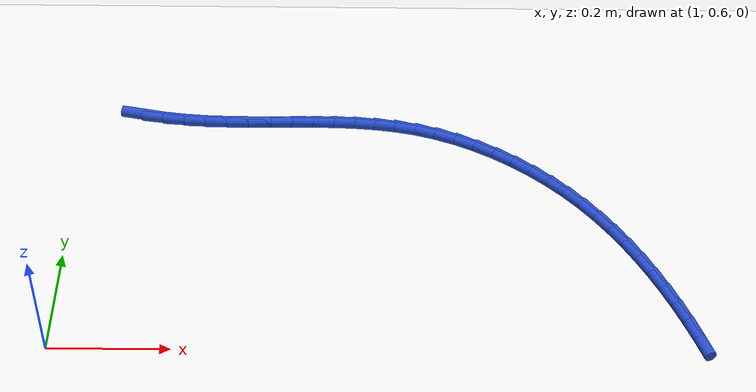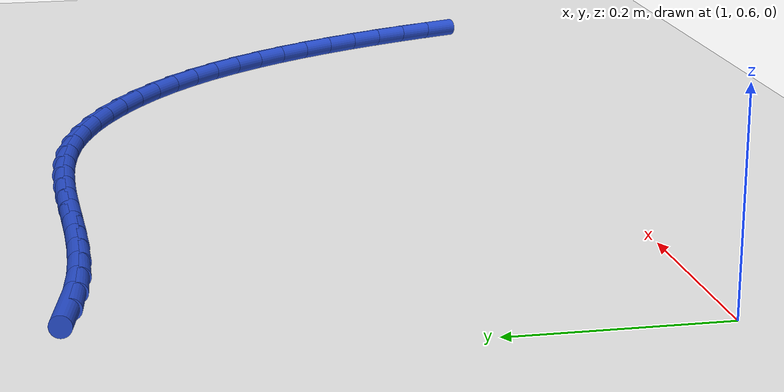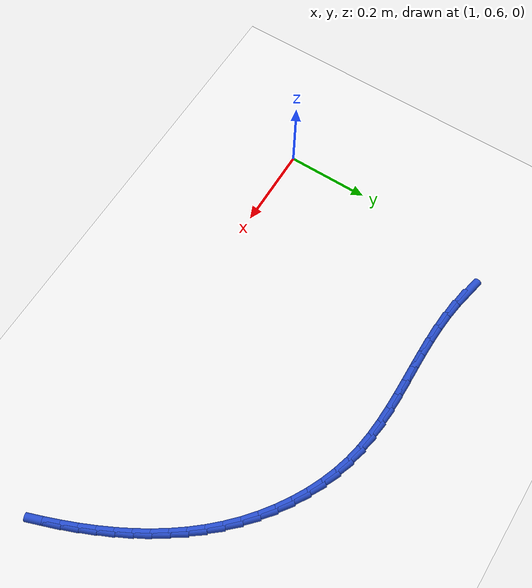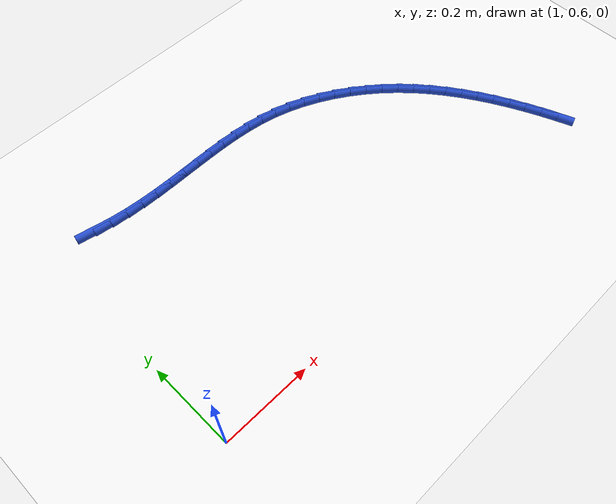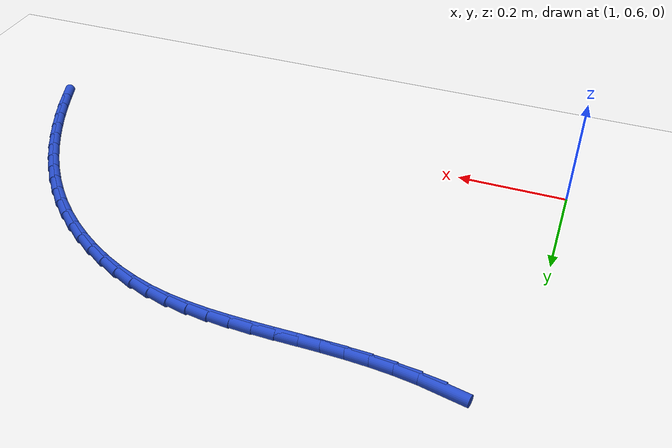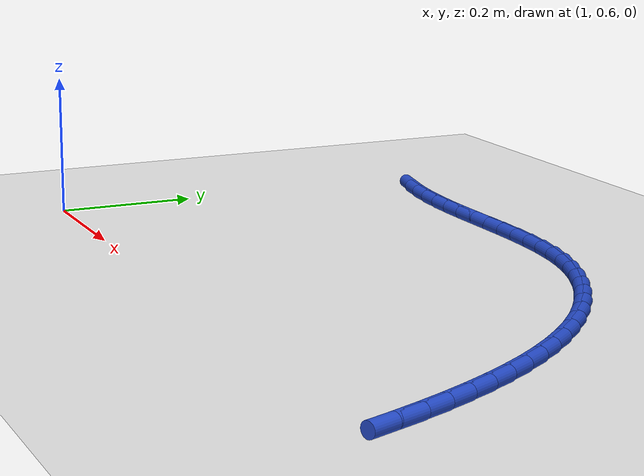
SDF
<sdf version="1.6">
 <world name="default">
  <model name="ground_plane">
   <static>1</static>
   <link name="link">
    <collision name="collision">
     <geometry><plane><normal>0 0 1</normal><size>100 100</size></plane></geometry>
     <surface><friction><ode><mu>100</mu><mu2>50</mu2></ode></friction></surface>
    </collision>
    <visual name="visual">
     <cast_shadows>0</cast_shadows>
     <geometry><plane><normal>0 0 1</normal><size>100 100</size></plane></geometry>
     <material>
      <script><uri>file://media/materials/scripts/gazebo.material</uri><name>Gazebo/WhiteGlow</name></script>
     </material>
    </visual>
   </link>
  </model>
  <model name="line">
   <link name="link_46">
    <pose>1.101560070446477 1.1359674359162086 0.01 0 1.57 -0.1992889178391938</pose>
    <collision name="collision">
     <geometry><cylinder><radius>0.01</radius><length>0.08</length></cylinder></geometry>
    </collision>
    <visual name="visual">
     <material>
      <script><name>Gazebo/Blue</name><uri>file://media/materials/scripts/gazebo.material</uri></script>
     </material>
     <geometry><cylinder><radius>0.01</radius><length>0.08</length></cylinder></geometry>
    </visual>
   </link>
   <link name="link_47">
    <pose>1.1397087469627167 1.1282625538016797 0.01 0 1.57 -0.1350952710099654</pose>
    <collision name="collision">
     <geometry><cylinder><radius>0.01</radius><length>0.08</length></cylinder></geometry>
    </collision>
    <visual name="visual">
     <material>
      <script><name>Gazebo/Blue</name><uri>file://media/materials/scripts/gazebo.material</uri></script>
     </material>
     <geometry><cylinder><radius>0.01</radius><length>0.08</length></cylinder></geometry>
    </visual>
   </link>
   <link name="link_48">
    <pose>1.1778838345319351 1.1230736745773449 0.01 0 1.57 -0.08133392156681518</pose>
    <collision name="collision">
     <geometry><cylinder><radius>0.01</radius><length>0.08</length></cylinder></geometry>
    </collision>
    <visual name="visual">
     <material>
      <script><name>Gazebo/Blue</name><uri>file://media/materials/scripts/gazebo.material</uri></script>
     </material>
     <geometry><cylinder><radius>0.01</radius><length>0.08</length></cylinder></geometry>
    </visual>
   </link>
   <link name="link_49">
    <pose>1.2160468347179172 1.1199628655380338 0.01 0 1.57 -0.03913708060453807</pose>
    <collision name="collision">
     <geometry><cylinder><radius>0.01</radius><length>0.08</length></cylinder></geometry>
    </collision>
    <visual name="visual">
     <material>
      <script><name>Gazebo/Blue</name><uri>file://media/materials/scripts/gazebo.material</uri></script>
     </material>
     <geometry><cylinder><radius>0.01</radius><length>0.08</length></cylinder></geometry>
    </visual>
   </link>
   <link name="link_50">
    <pose>1.2541618149288882 1.1184703943959258 0.01 0 1.57 -0.00877854155304162</pose>
    <collision name="collision">
     <geometry><cylinder><radius>0.01</radius><length>0.08</length></cylinder></geometry>
    </collision>
    <visual name="visual">
     <material>
      <script><name>Gazebo/Blue</name><uri>file://media/materials/scripts/gazebo.material</uri></script>
     </material>
     <geometry><cylinder><radius>0.01</radius><length>0.08</length></cylinder></geometry>
    </visual>
   </link>
   <link name="link_51">
    <pose>1.292192842573071 1.118136528863199 0.01 0 1.57 0.009627684290932397</pose>
    <collision name="collision">
     <geometry><cylinder><radius>0.01</radius><length>0.08</length></cylinder></geometry>
    </collision>
    <visual name="visual">
     <material>
      <script><name>Gazebo/Blue</name><uri>file://media/materials/scripts/gazebo.material</uri></script>
     </material>
     <geometry><cylinder><radius>0.01</radius><length>0.08</length></cylinder></geometry>
    </visual>
   </link>
   <link name="link_52">
    <pose>1.3301039850586902 1.1185015366520332 0.01 0 1.57 0.016000319685674228</pose>
    <collision name="collision">
     <geometry><cylinder><radius>0.01</radius><length>0.08</length></cylinder></geometry>
    </collision>
    <visual name="visual">
     <material>
      <script><name>Gazebo/Blue</name><uri>file://media/materials/scripts/gazebo.material</uri></script>
     </material>
     <geometry><cylinder><radius>0.01</radius><length>0.08</length></cylinder></geometry>
    </visual>
   </link>
   <link name="link_53">
    <pose>1.367859309793969 1.119105685474607 0.01 0 1.57 0.01021053627949765</pose>
    <collision name="collision">
     <geometry><cylinder><radius>0.01</radius><length>0.08</length></cylinder></geometry>
    </collision>
    <visual name="visual">
     <material>
      <script><name>Gazebo/Blue</name><uri>file://media/materials/scripts/gazebo.material</uri></script>
     </material>
     <geometry><cylinder><radius>0.01</radius><length>0.08</length></cylinder></geometry>
    </visual>
   </link>
   <link name="link_54">
    <pose>1.4054228841871328 1.1194892430431 0.01 0 1.57 -0.007948376541187201</pose>
    <collision name="collision">
     <geometry><cylinder><radius>0.01</radius><length>0.08</length></cylinder></geometry>
    </collision>
    <visual name="visual">
     <material>
      <script><name>Gazebo/Blue</name><uri>file://media/materials/scripts/gazebo.material</uri></script>
     </material>
     <geometry><cylinder><radius>0.01</radius><length>0.08</length></cylinder></geometry>
    </visual>
   </link>
   <link name="link_55">
    <pose>1.4427587756464044 1.1191924770696906 0.01 0 1.57 -0.038737924337312116</pose>
    <collision name="collision">
     <geometry><cylinder><radius>0.01</radius><length>0.08</length></cylinder></geometry>
    </collision>
    <visual name="visual">
     <material>
      <script><name>Gazebo/Blue</name><uri>file://media/materials/scripts/gazebo.material</uri></script>
     </material>
     <geometry><cylinder><radius>0.01</radius><length>0.08</length></cylinder></geometry>
    </visual>
   </link>
   <link name="link_56">
    <pose>1.479831051580008 1.1177556552665584 0.01 0 1.57 -0.08239083419778048</pose>
    <collision name="collision">
     <geometry><cylinder><radius>0.01</radius><length>0.08</length></cylinder></geometry>
    </collision>
    <visual name="visual">
     <material>
      <script><name>Gazebo/Blue</name><uri>file://media/materials/scripts/gazebo.material</uri></script>
     </material>
     <geometry><cylinder><radius>0.01</radius><length>0.08</length></cylinder></geometry>
    </visual>
   </link>
   <link name="link_57">
    <pose>1.5166037793961682 1.114719045345882 0.01 0 1.57 -0.1389590862366496</pose>
    <collision name="collision">
     <geometry><cylinder><radius>0.01</radius><length>0.08</length></cylinder></geometry>
    </collision>
    <visual name="visual">
     <material>
      <script><name>Gazebo/Blue</name><uri>file://media/materials/scripts/gazebo.material</uri></script>
     </material>
     <geometry><cylinder><radius>0.01</radius><length>0.08</length></cylinder></geometry>
    </visual>
   </link>
   <link name="link_58">
    <pose>1.5530410265031085 1.1096229150198407 0.01 0 1.57 -0.20809554832139596</pose>
    <collision name="collision">
     <geometry><cylinder><radius>0.01</radius><length>0.08</length></cylinder></geometry>
    </collision>
    <visual name="visual">
     <material>
      <script><name>Gazebo/Blue</name><uri>file://media/materials/scripts/gazebo.material</uri></script>
     </material>
     <geometry><cylinder><radius>0.01</radius><length>0.08</length></cylinder></geometry>
    </visual>
   </link>
   <link name="link_59">
    <pose>1.5891068603090526 1.102007532000613 0.01 0 1.57 -0.2867719032216477</pose>
    <collision name="collision">
     <geometry><cylinder><radius>0.01</radius><length>0.08</length></cylinder></geometry>
    </collision>
    <visual name="visual">
     <material>
      <script><name>Gazebo/Blue</name><uri>file://media/materials/scripts/gazebo.material</uri></script>
     </material>
     <geometry><cylinder><radius>0.01</radius><length>0.08</length></cylinder></geometry>
    </visual>
   </link>
   <link name="link_60">
    <pose>1.6247459759272804 1.091497535483131 0.01 0 1.57 -0.36375254858053074</pose>
    <collision name="collision">
     <geometry><cylinder><radius>0.01</radius><length>0.08</length></cylinder></geometry>
    </collision>
    <visual name="visual">
     <material>
      <script><name>Gazebo/Blue</name><uri>file://media/materials/scripts/gazebo.material</uri></script>
     </material>
     <geometry><cylinder><radius>0.01</radius><length>0.08</length></cylinder></geometry>
    </visual>
   </link>
   <link name="link_61">
    <pose>1.6598034585186796 1.0781513924253054 0.01 0 1.57 -0.4362256728753696</pose>
    <collision name="collision">
     <geometry><cylinder><radius>0.01</radius><length>0.08</length></cylinder></geometry>
    </collision>
    <visual name="visual">
     <material>
      <script><name>Gazebo/Blue</name><uri>file://media/materials/scripts/gazebo.material</uri></script>
     </material>
     <geometry><cylinder><radius>0.01</radius><length>0.08</length></cylinder></geometry>
    </visual>
   </link>
   <link name="link_62">
    <pose>1.6940924671043063 1.0621666165920467 0.01 0 1.57 -0.5049667959516304</pose>
    <collision name="collision">
     <geometry><cylinder><radius>0.01</radius><length>0.08</length></cylinder></geometry>
    </collision>
    <visual name="visual">
     <material>
      <script><name>Gazebo/Blue</name><uri>file://media/materials/scripts/gazebo.material</uri></script>
     </material>
     <geometry><cylinder><radius>0.01</radius><length>0.08</length></cylinder></geometry>
    </visual>
   </link>
   <link name="link_63">
    <pose>1.7274261461274572 1.043740785238263 0.01 0 1.57 -0.5707828892560924</pose>
    <collision name="collision">
     <geometry><cylinder><radius>0.01</radius><length>0.08</length></cylinder></geometry>
    </collision>
    <visual name="visual">
     <material>
      <script><name>Gazebo/Blue</name><uri>file://media/materials/scripts/gazebo.material</uri></script>
     </material>
     <geometry><cylinder><radius>0.01</radius><length>0.08</length></cylinder></geometry>
    </visual>
   </link>
   <link name="link_64">
    <pose>1.7596176400314312 1.0230714756188637 0.01 0 1.57 -0.6344900885407306</pose>
    <collision name="collision">
     <geometry><cylinder><radius>0.01</radius><length>0.08</length></cylinder></geometry>
    </collision>
    <visual name="visual">
     <material>
      <script><name>Gazebo/Blue</name><uri>file://media/materials/scripts/gazebo.material</uri></script>
     </material>
     <geometry><cylinder><radius>0.01</radius><length>0.08</length></cylinder></geometry>
    </visual>
   </link>
   <link name="link_65">
    <pose>1.7904800932595248 1.0003562649887585 0.01 0 1.57 -0.6969076532412875</pose>
    <collision name="collision">
     <geometry><cylinder><radius>0.01</radius><length>0.08</length></cylinder></geometry>
    </collision>
    <visual name="visual">
     <material>
      <script><name>Gazebo/Blue</name><uri>file://media/materials/scripts/gazebo.material</uri></script>
     </material>
     <geometry><cylinder><radius>0.01</radius><length>0.08</length></cylinder></geometry>
    </visual>
   </link>
   <link name="link_66">
    <pose>1.819826650255036 0.9757927306028568 0.01 0 1.57 -0.758807320168364</pose>
    <collision name="collision">
     <geometry><cylinder><radius>0.01</radius><length>0.08</length></cylinder></geometry>
    </collision>
    <visual name="visual">
     <material>
      <script><name>Gazebo/Blue</name><uri>file://media/materials/scripts/gazebo.material</uri></script>
     </material>
     <geometry><cylinder><radius>0.01</radius><length>0.08</length></cylinder></geometry>
    </visual>
   </link>
   <link name="link_67">
    <pose>1.8474746657595695 0.9495773265140206 0.01 0 1.57 -0.819230387233219</pose>
    <collision name="collision">
     <geometry><cylinder><radius>0.01</radius><length>0.08</length></cylinder></geometry>
    </collision>
    <visual name="visual">
     <material>
      <script><name>Gazebo/Blue</name><uri>file://media/materials/scripts/gazebo.material</uri></script>
     </material>
     <geometry><cylinder><radius>0.01</radius><length>0.08</length></cylinder></geometry>
    </visual>
   </link>
   <link name="link_68">
    <pose>1.8733643994042504 0.9218737188315165 0.01 0 1.57 -0.8762609594338301</pose>
    <collision name="collision">
     <geometry><cylinder><radius>0.01</radius><length>0.08</length></cylinder></geometry>
    </collision>
    <visual name="visual">
     <material>
      <script><name>Gazebo/Blue</name><uri>file://media/materials/scripts/gazebo.material</uri></script>
     </material>
     <geometry><cylinder><radius>0.01</radius><length>0.08</length></cylinder></geometry>
    </visual>
   </link>
   <link name="link_69">
    <pose>1.8975755216495918 0.8928083823500186 0.01 0 1.57 -0.9295640055066728</pose>
    <collision name="collision">
     <geometry><cylinder><radius>0.01</radius><length>0.08</length></cylinder></geometry>
    </collision>
    <visual name="visual">
     <material>
      <script><name>Gazebo/Blue</name><uri>file://media/materials/scripts/gazebo.material</uri></script>
     </material>
     <geometry><cylinder><radius>0.01</radius><length>0.08</length></cylinder></geometry>
    </visual>
   </link>
   <link name="link_70">
    <pose>1.9201952308841532 0.8625057836017064 0.01 0 1.57 -0.9790151249170048</pose>
    <collision name="collision">
     <geometry><cylinder><radius>0.01</radius><length>0.08</length></cylinder></geometry>
    </collision>
    <visual name="visual">
     <material>
      <script><name>Gazebo/Blue</name><uri>file://media/materials/scripts/gazebo.material</uri></script>
     </material>
     <geometry><cylinder><radius>0.01</radius><length>0.08</length></cylinder></geometry>
    </visual>
   </link>
   <link name="link_71">
    <pose>1.941310725496494 0.8310903891187572 0.01 0 1.57 -1.0245825023831916</pose>
    <collision name="collision">
     <geometry><cylinder><radius>0.01</radius><length>0.08</length></cylinder></geometry>
    </collision>
    <visual name="visual">
     <material>
      <script><name>Gazebo/Blue</name><uri>file://media/materials/scripts/gazebo.material</uri></script>
     </material>
     <geometry><cylinder><radius>0.01</radius><length>0.08</length></cylinder></geometry>
    </visual>
   </link>
   <link name="link_72">
    <pose>1.9610092038751747 0.7986866654333512 0.01 0 1.57 -1.0663048014358874</pose>
    <collision name="collision">
     <geometry><cylinder><radius>0.01</radius><length>0.08</length></cylinder></geometry>
    </collision>
    <visual name="visual">
     <material>
      <script><name>Gazebo/Blue</name><uri>file://media/materials/scripts/gazebo.material</uri></script>
     </material>
     <geometry><cylinder><radius>0.01</radius><length>0.08</length></cylinder></geometry>
    </visual>
   </link>
   <link name="link_73">
    <pose>1.9793778644087547 0.7654190790776668 0.01 0 1.57 -1.1042699420628443</pose>
    <collision name="collision">
     <geometry><cylinder><radius>0.01</radius><length>0.08</length></cylinder></geometry>
    </collision>
    <visual name="visual">
     <material>
      <script><name>Gazebo/Blue</name><uri>file://media/materials/scripts/gazebo.material</uri></script>
     </material>
     <geometry><cylinder><radius>0.01</radius><length>0.08</length></cylinder></geometry>
    </visual>
   </link>
   <link name="link_74">
    <pose>1.9965039054857934 0.7314120965838824 0.01 0 1.57 -1.138596301172894</pose>
    <collision name="collision">
     <geometry><cylinder><radius>0.01</radius><length>0.08</length></cylinder></geometry>
    </collision>
    <visual name="visual">
     <material>
      <script><name>Gazebo/Blue</name><uri>file://media/materials/scripts/gazebo.material</uri></script>
     </material>
     <geometry><cylinder><radius>0.01</radius><length>0.08</length></cylinder></geometry>
    </visual>
   </link>
   <link name="link_75">
    <pose>2.0124745254948513 0.6967901844841767 0.01 0 1.57 -1.1694169733152449</pose>
    <collision name="collision">
     <geometry><cylinder><radius>0.01</radius><length>0.08</length></cylinder></geometry>
    </collision>
    <visual name="visual">
     <material>
      <script><name>Gazebo/Blue</name><uri>file://media/materials/scripts/gazebo.material</uri></script>
     </material>
     <geometry><cylinder><radius>0.01</radius><length>0.08</length></cylinder></geometry>
    </visual>
   </link>
   <link name="link_76">
    <pose>2.027376922824487 0.6616778093107293 0.01 0 1.57 -1.1968670996404054</pose>
    <collision name="collision">
     <geometry><cylinder><radius>0.01</radius><length>0.08</length></cylinder></geometry>
    </collision>
    <visual name="visual">
     <material>
      <script><name>Gazebo/Blue</name><uri>file://media/materials/scripts/gazebo.material</uri></script>
     </material>
     <geometry><cylinder><radius>0.01</radius><length>0.08</length></cylinder></geometry>
    </visual>
   </link>
   <link name="link_77">
    <pose>2.0412982958632613 0.6261994375957177 0.01 0 1.57 -1.2210738989811984</pose>
    <collision name="collision">
     <geometry><cylinder><radius>0.01</radius><length>0.08</length></cylinder></geometry>
    </collision>
    <visual name="visual">
     <material>
      <script><name>Gazebo/Blue</name><uri>file://media/materials/scripts/gazebo.material</uri></script>
     </material>
     <geometry><cylinder><radius>0.01</radius><length>0.08</length></cylinder></geometry>
    </visual>
   </link>
  </model>
 </world>
</sdf>
